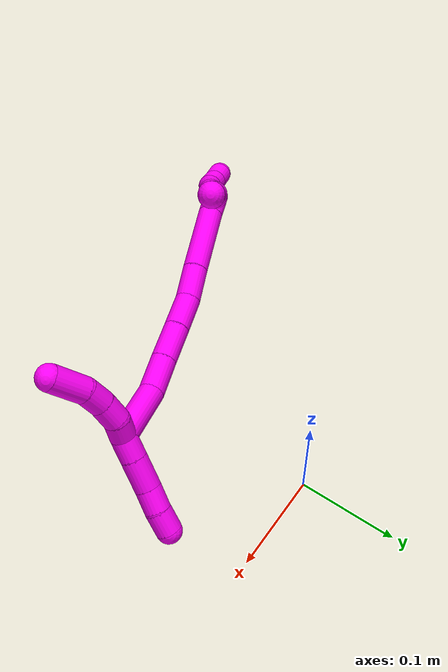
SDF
<sdf version="1.7">
 <world name="default">
  <model name="10">
   <static>0</static>
   <link name="10">
    <collision name="collision-cylinder-e_1_2_8">
     <pose>0.000528 -0.00213 -0.059016 3.10552 0.008933 0.485471</pose>
     <geometry><cylinder><radius>0.0125</radius><length>0.118114</length></cylinder></geometry>
     <surface>
      <friction><ode><mu>1.16</mu><mu2>1.16</mu2><slip1>0</slip1><slip2>0</slip2></ode></friction>
      <contact><ode><kp>1e+06</kp><kd>1</kd><max_vel>0</max_vel><min_depth>0.001</min_depth></ode></contact>
     </surface>
    </collision>
    <visual name="visual-cylinder-e_1_2_8">
     <pose>0.000528 -0.00213 -0.059016 3.10552 0.008933 0.485471</pose>
     <geometry><cylinder><radius>0.0125</radius><length>0.118114</length></cylinder></geometry>
     <material><ambient>1 0 0.964706 1</ambient></material>
    </visual>
    <collision name="collision-cylinder-e_2_8_6">
     <pose>0.001541 -0.003828 -0.133962 -3.11453 0.030501 -1.69025</pose>
     <geometry><cylinder><radius>0.0125</radius><length>0.031886</length></cylinder></geometry>
     <surface>
      <friction><ode><mu>1.16</mu><mu2>1.16</mu2><slip1>0</slip1><slip2>0</slip2></ode></friction>
      <contact><ode><kp>1e+06</kp><kd>1</kd><max_vel>0</max_vel><min_depth>0.001</min_depth></ode></contact>
     </surface>
    </collision>
    <visual name="visual-cylinder-e_2_8_6">
     <pose>0.001541 -0.003828 -0.133962 -3.11453 0.030501 -1.69025</pose>
     <geometry><cylinder><radius>0.0125</radius><length>0.031886</length></cylinder></geometry>
     <material><ambient>1 0 0.964706 1</ambient></material>
    </visual>
    <collision name="collision-cylinder-e_1_2_9">
     <pose>-0.002971 0.002964 0.009077 -0.315676 -0.301603 0.048361</pose>
     <geometry><cylinder><radius>0.0125</radius><length>0.02</length></cylinder></geometry>
     <surface>
      <friction><ode><mu>1.16</mu><mu2>1.16</mu2><slip1>0</slip1><slip2>0</slip2></ode></friction>
      <contact><ode><kp>1e+06</kp><kd>1</kd><max_vel>0</max_vel><min_depth>0.001</min_depth></ode></contact>
     </surface>
    </collision>
    <visual name="visual-cylinder-e_1_2_9">
     <pose>-0.002971 0.002964 0.009077 -0.315676 -0.301603 0.048361</pose>
     <geometry><cylinder><radius>0.0125</radius><length>0.02</length></cylinder></geometry>
     <material><ambient>1 0 0.964706 1</ambient></material>
    </visual>
    <collision name="collision-cylinder-e_2_9_10">
     <pose>-0.007734 0.005843 0.027991 0.008758 -0.180226 -0.000791</pose>
     <geometry><cylinder><radius>0.0125</radius><length>0.02</length></cylinder></geometry>
     <surface>
      <friction><ode><mu>1.16</mu><mu2>1.16</mu2><slip1>0</slip1><slip2>0</slip2></ode></friction>
      <contact><ode><kp>1e+06</kp><kd>1</kd><max_vel>0</max_vel><min_depth>0.001</min_depth></ode></contact>
     </surface>
    </collision>
    <visual name="visual-cylinder-e_2_9_10">
     <pose>-0.007734 0.005843 0.027991 0.008758 -0.180226 -0.000791</pose>
     <geometry><cylinder><radius>0.0125</radius><length>0.02</length></cylinder></geometry>
     <material><ambient>1 0 0.964706 1</ambient></material>
    </visual>
    <collision name="collision-cylinder-e_3_10_11">
     <pose>-0.012327 0.006242 0.047416 -0.050612 -0.283901 0.007235</pose>
     <geometry><cylinder><radius>0.0125</radius><length>0.02</length></cylinder></geometry>
     <surface>
      <friction><ode><mu>1.16</mu><mu2>1.16</mu2><slip1>0</slip1><slip2>0</slip2></ode></friction>
      <contact><ode><kp>1e+06</kp><kd>1</kd><max_vel>0</max_vel><min_depth>0.001</min_depth></ode></contact>
     </surface>
    </collision>
    <visual name="visual-cylinder-e_3_10_11">
     <pose>-0.012327 0.006242 0.047416 -0.050612 -0.283901 0.007235</pose>
     <geometry><cylinder><radius>0.0125</radius><length>0.02</length></cylinder></geometry>
     <material><ambient>1 0 0.964706 1</ambient></material>
    </visual>
    <collision name="collision-cylinder-e_4_11_12">
     <pose>-0.01773 0.003818 0.066211 0.306088 -0.263203 -0.04083</pose>
     <geometry><cylinder><radius>0.0125</radius><length>0.02</length></cylinder></geometry>
     <surface>
      <friction><ode><mu>1.16</mu><mu2>1.16</mu2><slip1>0</slip1><slip2>0</slip2></ode></friction>
      <contact><ode><kp>1e+06</kp><kd>1</kd><max_vel>0</max_vel><min_depth>0.001</min_depth></ode></contact>
     </surface>
    </collision>
    <visual name="visual-cylinder-e_4_11_12">
     <pose>-0.01773 0.003818 0.066211 0.306088 -0.263203 -0.04083</pose>
     <geometry><cylinder><radius>0.0125</radius><length>0.02</length></cylinder></geometry>
     <material><ambient>1 0 0.964706 1</ambient></material>
    </visual>
    <collision name="collision-cylinder-e_5_12_5">
     <pose>-0.024077 -0.002555 0.084018 0.382891 -0.383856 -0.07529</pose>
     <geometry><cylinder><radius>0.0125</radius><length>0.02</length></cylinder></geometry>
     <surface>
      <friction><ode><mu>1.16</mu><mu2>1.16</mu2><slip1>0</slip1><slip2>0</slip2></ode></friction>
      <contact><ode><kp>1e+06</kp><kd>1</kd><max_vel>0</max_vel><min_depth>0.001</min_depth></ode></contact>
     </surface>
    </collision>
    <visual name="visual-cylinder-e_5_12_5">
     <pose>-0.024077 -0.002555 0.084018 0.382891 -0.383856 -0.07529</pose>
     <geometry><cylinder><radius>0.0125</radius><length>0.02</length></cylinder></geometry>
     <material><ambient>1 0 0.964706 1</ambient></material>
    </visual>
    <collision name="collision-cylinder-e_1_2_13">
     <pose>0.008031 0.004537 -0.006404 -2.52521 0.796925 -1.84672</pose>
     <geometry><cylinder><radius>0.0125</radius><length>0.022457</length></cylinder></geometry>
     <surface>
      <friction><ode><mu>1.16</mu><mu2>1.16</mu2><slip1>0</slip1><slip2>0</slip2></ode></friction>
      <contact><ode><kp>1e+06</kp><kd>1</kd><max_vel>0</max_vel><min_depth>0.001</min_depth></ode></contact>
     </surface>
    </collision>
    <visual name="visual-cylinder-e_1_2_13">
     <pose>0.008031 0.004537 -0.006404 -2.52521 0.796925 -1.84672</pose>
     <geometry><cylinder><radius>0.0125</radius><length>0.022457</length></cylinder></geometry>
     <material><ambient>1 0 0.964706 1</ambient></material>
    </visual>
    <collision name="collision-cylinder-e_2_13_14">
     <pose>0.0421 0.022037 -0.032037 -2.54842 0.843162 -1.94529</pose>
     <geometry><cylinder><radius>0.0125</radius><length>0.069738</length></cylinder></geometry>
     <surface>
      <friction><ode><mu>1.16</mu><mu2>1.16</mu2><slip1>0</slip1><slip2>0</slip2></ode></friction>
      <contact><ode><kp>1e+06</kp><kd>1</kd><max_vel>0</max_vel><min_depth>0.001</min_depth></ode></contact>
     </surface>
    </collision>
    <visual name="visual-cylinder-e_2_13_14">
     <pose>0.0421 0.022037 -0.032037 -2.54842 0.843162 -1.94529</pose>
     <geometry><cylinder><radius>0.0125</radius><length>0.069738</length></cylinder></geometry>
     <material><ambient>1 0 0.964706 1</ambient></material>
    </visual>
    <collision name="collision-cylinder-e_3_14_15">
     <pose>0.081829 0.041377 -0.060304 -2.52719 0.891281 -1.96912</pose>
     <geometry><cylinder><radius>0.0125</radius><length>0.0352</length></cylinder></geometry>
     <surface>
      <friction><ode><mu>1.16</mu><mu2>1.16</mu2><slip1>0</slip1><slip2>0</slip2></ode></friction>
      <contact><ode><kp>1e+06</kp><kd>1</kd><max_vel>0</max_vel><min_depth>0.001</min_depth></ode></contact>
     </surface>
    </collision>
    <visual name="visual-cylinder-e_3_14_15">
     <pose>0.081829 0.041377 -0.060304 -2.52719 0.891281 -1.96912</pose>
     <geometry><cylinder><radius>0.0125</radius><length>0.0352</length></cylinder></geometry>
     <material><ambient>1 0 0.964706 1</ambient></material>
    </visual>
    <collision name="collision-cylinder-e_4_15_16">
     <pose>0.107139 0.055259 -0.080925 -2.56666 0.699732 -1.77962</pose>
     <geometry><cylinder><radius>0.0125</radius><length>0.036086</length></cylinder></geometry>
     <surface>
      <friction><ode><mu>1.16</mu><mu2>1.16</mu2><slip1>0</slip1><slip2>0</slip2></ode></friction>
      <contact><ode><kp>1e+06</kp><kd>1</kd><max_vel>0</max_vel><min_depth>0.001</min_depth></ode></contact>
     </surface>
    </collision>
    <visual name="visual-cylinder-e_4_15_16">
     <pose>0.107139 0.055259 -0.080925 -2.56666 0.699732 -1.77962</pose>
     <geometry><cylinder><radius>0.0125</radius><length>0.036086</length></cylinder></geometry>
     <material><ambient>1 0 0.964706 1</ambient></material>
    </visual>
    <collision name="collision-cylinder-e_5_16_17">
     <pose>0.131213 0.07099 -0.104347 -2.53434 0.712526 -1.74202</pose>
     <geometry><cylinder><radius>0.0125</radius><length>0.0381</length></cylinder></geometry>
     <surface>
      <friction><ode><mu>1.16</mu><mu2>1.16</mu2><slip1>0</slip1><slip2>0</slip2></ode></friction>
      <contact><ode><kp>1e+06</kp><kd>1</kd><max_vel>0</max_vel><min_depth>0.001</min_depth></ode></contact>
     </surface>
    </collision>
    <visual name="visual-cylinder-e_5_16_17">
     <pose>0.131213 0.07099 -0.104347 -2.53434 0.712526 -1.74202</pose>
     <geometry><cylinder><radius>0.0125</radius><length>0.0381</length></cylinder></geometry>
     <material><ambient>1 0 0.964706 1</ambient></material>
    </visual>
    <collision name="collision-cylinder-e_6_17_18">
     <pose>0.155876 0.086883 -0.127813 -2.55864 0.719725 -1.79528</pose>
     <geometry><cylinder><radius>0.0125</radius><length>0.037042</length></cylinder></geometry>
     <surface>
      <friction><ode><mu>1.16</mu><mu2>1.16</mu2><slip1>0</slip1><slip2>0</slip2></ode></friction>
      <contact><ode><kp>1e+06</kp><kd>1</kd><max_vel>0</max_vel><min_depth>0.001</min_depth></ode></contact>
     </surface>
    </collision>
    <visual name="visual-cylinder-e_6_17_18">
     <pose>0.155876 0.086883 -0.127813 -2.55864 0.719725 -1.79528</pose>
     <geometry><cylinder><radius>0.0125</radius><length>0.037042</length></cylinder></geometry>
     <material><ambient>1 0 0.964706 1</ambient></material>
    </visual>
    <collision name="collision-cylinder-e_7_18_1">
     <pose>0.180376 0.107157 -0.164576 -2.6767 0.412073 -1.44657</pose>
     <geometry><cylinder><radius>0.0125</radius><length>0.061377</length></cylinder></geometry>
     <surface>
      <friction><ode><mu>1.16</mu><mu2>1.16</mu2><slip1>0</slip1><slip2>0</slip2></ode></friction>
      <contact><ode><kp>1e+06</kp><kd>1</kd><max_vel>0</max_vel><min_depth>0.001</min_depth></ode></contact>
     </surface>
    </collision>
    <visual name="visual-cylinder-e_7_18_1">
     <pose>0.180376 0.107157 -0.164576 -2.6767 0.412073 -1.44657</pose>
     <geometry><cylinder><radius>0.0125</radius><length>0.061377</length></cylinder></geometry>
     <material><ambient>1 0 0.964706 1</ambient></material>
    </visual>
    <collision name="collision-cylinder-e_1_1_19">
     <pose>0.183765 0.119663 -0.194978 3.1225 -1.03642 -3.1081</pose>
     <geometry><cylinder><radius>0.0125</radius><length>0.020687</length></cylinder></geometry>
     <surface>
      <friction><ode><mu>1.16</mu><mu2>1.16</mu2><slip1>0</slip1><slip2>0</slip2></ode></friction>
      <contact><ode><kp>1e+06</kp><kd>1</kd><max_vel>0</max_vel><min_depth>0.001</min_depth></ode></contact>
     </surface>
    </collision>
    <visual name="visual-cylinder-e_1_1_19">
     <pose>0.183765 0.119663 -0.194978 3.1225 -1.03642 -3.1081</pose>
     <geometry><cylinder><radius>0.0125</radius><length>0.020687</length></cylinder></geometry>
     <material><ambient>1 0 0.964706 1</ambient></material>
    </visual>
    <collision name="collision-cylinder-e_2_19_20">
     <pose>0.165474 0.123013 -0.205141 -2.52755 -1.00294 2.09294</pose>
     <geometry><cylinder><radius>0.0125</radius><length>0.022275</length></cylinder></geometry>
     <surface>
      <friction><ode><mu>1.16</mu><mu2>1.16</mu2><slip1>0</slip1><slip2>0</slip2></ode></friction>
      <contact><ode><kp>1e+06</kp><kd>1</kd><max_vel>0</max_vel><min_depth>0.001</min_depth></ode></contact>
     </surface>
    </collision>
    <visual name="visual-cylinder-e_2_19_20">
     <pose>0.165474 0.123013 -0.205141 -2.52755 -1.00294 2.09294</pose>
     <geometry><cylinder><radius>0.0125</radius><length>0.022275</length></cylinder></geometry>
     <material><ambient>1 0 0.964706 1</ambient></material>
    </visual>
    <collision name="collision-cylinder-e_3_20_21">
     <pose>0.148103 0.130728 -0.215975 -2.519 -0.829231 1.87907</pose>
     <geometry><cylinder><radius>0.0125</radius><length>0.021645</length></cylinder></geometry>
     <surface>
      <friction><ode><mu>1.16</mu><mu2>1.16</mu2><slip1>0</slip1><slip2>0</slip2></ode></friction>
      <contact><ode><kp>1e+06</kp><kd>1</kd><max_vel>0</max_vel><min_depth>0.001</min_depth></ode></contact>
     </surface>
    </collision>
    <visual name="visual-cylinder-e_3_20_21">
     <pose>0.148103 0.130728 -0.215975 -2.519 -0.829231 1.87907</pose>
     <geometry><cylinder><radius>0.0125</radius><length>0.021645</length></cylinder></geometry>
     <material><ambient>1 0 0.964706 1</ambient></material>
    </visual>
    <collision name="collision-cylinder-e_4_21_4">
     <pose>0.130168 0.145828 -0.231742 -2.30738 -0.597463 1.21469</pose>
     <geometry><cylinder><radius>0.0125</radius><length>0.035392</length></cylinder></geometry>
     <surface>
      <friction><ode><mu>1.16</mu><mu2>1.16</mu2><slip1>0</slip1><slip2>0</slip2></ode></friction>
      <contact><ode><kp>1e+06</kp><kd>1</kd><max_vel>0</max_vel><min_depth>0.001</min_depth></ode></contact>
     </surface>
    </collision>
    <visual name="visual-cylinder-e_4_21_4">
     <pose>0.130168 0.145828 -0.231742 -2.30738 -0.597463 1.21469</pose>
     <geometry><cylinder><radius>0.0125</radius><length>0.035392</length></cylinder></geometry>
     <material><ambient>1 0 0.964706 1</ambient></material>
    </visual>
    <collision name="collision-cylinder-e_1_1_22">
     <pose>0.203484 0.117946 -0.188212 0.881276 1.35638 0.726158</pose>
     <geometry><cylinder><radius>0.0125</radius><length>0.022141</length></cylinder></geometry>
     <surface>
      <friction><ode><mu>1.16</mu><mu2>1.16</mu2><slip1>0</slip1><slip2>0</slip2></ode></friction>
      <contact><ode><kp>1e+06</kp><kd>1</kd><max_vel>0</max_vel><min_depth>0.001</min_depth></ode></contact>
     </surface>
    </collision>
    <visual name="visual-cylinder-e_1_1_22">
     <pose>0.203484 0.117946 -0.188212 0.881276 1.35638 0.726158</pose>
     <geometry><cylinder><radius>0.0125</radius><length>0.022141</length></cylinder></geometry>
     <material><ambient>1 0 0.964706 1</ambient></material>
    </visual>
    <collision name="collision-cylinder-e_2_22_23">
     <pose>0.229793 0.113566 -0.184384 0.832873 1.35088 0.681091</pose>
     <geometry><cylinder><radius>0.0125</radius><length>0.031749</length></cylinder></geometry>
     <surface>
      <friction><ode><mu>1.16</mu><mu2>1.16</mu2><slip1>0</slip1><slip2>0</slip2></ode></friction>
      <contact><ode><kp>1e+06</kp><kd>1</kd><max_vel>0</max_vel><min_depth>0.001</min_depth></ode></contact>
     </surface>
    </collision>
    <visual name="visual-cylinder-e_2_22_23">
     <pose>0.229793 0.113566 -0.184384 0.832873 1.35088 0.681091</pose>
     <geometry><cylinder><radius>0.0125</radius><length>0.031749</length></cylinder></geometry>
     <material><ambient>1 0 0.964706 1</ambient></material>
    </visual>
    <collision name="collision-cylinder-e_3_23_24">
     <pose>0.256663 0.109149 -0.181724 1.39471 1.4067 1.23542</pose>
     <geometry><cylinder><radius>0.0125</radius><length>0.023064</length></cylinder></geometry>
     <surface>
      <friction><ode><mu>1.16</mu><mu2>1.16</mu2><slip1>0</slip1><slip2>0</slip2></ode></friction>
      <contact><ode><kp>1e+06</kp><kd>1</kd><max_vel>0</max_vel><min_depth>0.001</min_depth></ode></contact>
     </surface>
    </collision>
    <visual name="visual-cylinder-e_3_23_24">
     <pose>0.256663 0.109149 -0.181724 1.39471 1.4067 1.23542</pose>
     <geometry><cylinder><radius>0.0125</radius><length>0.023064</length></cylinder></geometry>
     <material><ambient>1 0 0.964706 1</ambient></material>
    </visual>
    <collision name="collision-cylinder-e_4_24_3">
     <pose>0.279178 0.104767 -0.179871 1.02838 1.31179 0.820108</pose>
     <geometry><cylinder><radius>0.0125</radius><length>0.023046</length></cylinder></geometry>
     <surface>
      <friction><ode><mu>1.16</mu><mu2>1.16</mu2><slip1>0</slip1><slip2>0</slip2></ode></friction>
      <contact><ode><kp>1e+06</kp><kd>1</kd><max_vel>0</max_vel><min_depth>0.001</min_depth></ode></contact>
     </surface>
    </collision>
    <visual name="visual-cylinder-e_4_24_3">
     <pose>0.279178 0.104767 -0.179871 1.02838 1.31179 0.820108</pose>
     <geometry><cylinder><radius>0.0125</radius><length>0.023046</length></cylinder></geometry>
     <material><ambient>1 0 0.964706 1</ambient></material>
    </visual>
    <collision name="collision-sphere-3">
     <pose>0.290316 0.102239 -0.178347 0 -0 0</pose>
     <geometry><sphere><radius>0.0125</radius></sphere></geometry>
     <surface>
      <friction><ode><mu>1.16</mu><mu2>1.16</mu2><slip1>0</slip1><slip2>0</slip2></ode></friction>
      <contact><ode><kp>1e+06</kp><kd>1</kd><max_vel>0</max_vel><min_depth>0.001</min_depth></ode></contact>
     </surface>
    </collision>
    <visual name="visual-sphere-3">
     <pose>0.290316 0.102239 -0.178347 0 -0 0</pose>
     <geometry><sphere><radius>0.0125</radius></sphere></geometry>
     <material><ambient>1 0 0.964706 1</ambient></material>
    </visual>
    <collision name="collision-sphere-24">
     <pose>0.268039 0.107294 -0.181394 0 -0 0</pose>
     <geometry><sphere><radius>0.0125</radius></sphere></geometry>
     <surface>
      <friction><ode><mu>1.16</mu><mu2>1.16</mu2><slip1>0</slip1><slip2>0</slip2></ode></friction>
      <contact><ode><kp>1e+06</kp><kd>1</kd><max_vel>0</max_vel><min_depth>0.001</min_depth></ode></contact>
     </surface>
    </collision>
    <visual name="visual-sphere-24">
     <pose>0.268039 0.107294 -0.181394 0 -0 0</pose>
     <geometry><sphere><radius>0.0125</radius></sphere></geometry>
     <material><ambient>1 0 0.964706 1</ambient></material>
    </visual>
    <collision name="collision-sphere-23">
     <pose>0.245286 0.111004 -0.182054 0 -0 0</pose>
     <geometry><sphere><radius>0.0125</radius></sphere></geometry>
     <surface>
      <friction><ode><mu>1.16</mu><mu2>1.16</mu2><slip1>0</slip1><slip2>0</slip2></ode></friction>
      <contact><ode><kp>1e+06</kp><kd>1</kd><max_vel>0</max_vel><min_depth>0.001</min_depth></ode></contact>
     </surface>
    </collision>
    <visual name="visual-sphere-23">
     <pose>0.245286 0.111004 -0.182054 0 -0 0</pose>
     <geometry><sphere><radius>0.0125</radius></sphere></geometry>
     <material><ambient>1 0 0.964706 1</ambient></material>
    </visual>
    <collision name="collision-sphere-22">
     <pose>0.214301 0.116128 -0.186714 0 -0 0</pose>
     <geometry><sphere><radius>0.0125</radius></sphere></geometry>
     <surface>
      <friction><ode><mu>1.16</mu><mu2>1.16</mu2><slip1>0</slip1><slip2>0</slip2></ode></friction>
      <contact><ode><kp>1e+06</kp><kd>1</kd><max_vel>0</max_vel><min_depth>0.001</min_depth></ode></contact>
     </surface>
    </collision>
    <visual name="visual-sphere-22">
     <pose>0.214301 0.116128 -0.186714 0 -0 0</pose>
     <geometry><sphere><radius>0.0125</radius></sphere></geometry>
     <material><ambient>1 0 0.964706 1</ambient></material>
    </visual>
    <collision name="collision-sphere-4">
     <pose>0.120213 0.156666 -0.24157 0 -0 0</pose>
     <geometry><sphere><radius>0.0125</radius></sphere></geometry>
     <surface>
      <friction><ode><mu>1.16</mu><mu2>1.16</mu2><slip1>0</slip1><slip2>0</slip2></ode></friction>
      <contact><ode><kp>1e+06</kp><kd>1</kd><max_vel>0</max_vel><min_depth>0.001</min_depth></ode></contact>
     </surface>
    </collision>
    <visual name="visual-sphere-4">
     <pose>0.120213 0.156666 -0.24157 0 -0 0</pose>
     <geometry><sphere><radius>0.0125</radius></sphere></geometry>
     <material><ambient>1 0 0.964706 1</ambient></material>
    </visual>
    <collision name="collision-sphere-21">
     <pose>0.140123 0.13499 -0.221914 0 -0 0</pose>
     <geometry><sphere><radius>0.0125</radius></sphere></geometry>
     <surface>
      <friction><ode><mu>1.16</mu><mu2>1.16</mu2><slip1>0</slip1><slip2>0</slip2></ode></friction>
      <contact><ode><kp>1e+06</kp><kd>1</kd><max_vel>0</max_vel><min_depth>0.001</min_depth></ode></contact>
     </surface>
    </collision>
    <visual name="visual-sphere-21">
     <pose>0.140123 0.13499 -0.221914 0 -0 0</pose>
     <geometry><sphere><radius>0.0125</radius></sphere></geometry>
     <material><ambient>1 0 0.964706 1</ambient></material>
    </visual>
    <collision name="collision-sphere-20">
     <pose>0.156084 0.126465 -0.210037 0 -0 0</pose>
     <geometry><sphere><radius>0.0125</radius></sphere></geometry>
     <surface>
      <friction><ode><mu>1.16</mu><mu2>1.16</mu2><slip1>0</slip1><slip2>0</slip2></ode></friction>
      <contact><ode><kp>1e+06</kp><kd>1</kd><max_vel>0</max_vel><min_depth>0.001</min_depth></ode></contact>
     </surface>
    </collision>
    <visual name="visual-sphere-20">
     <pose>0.156084 0.126465 -0.210037 0 -0 0</pose>
     <geometry><sphere><radius>0.0125</radius></sphere></geometry>
     <material><ambient>1 0 0.964706 1</ambient></material>
    </visual>
    <collision name="collision-sphere-11">
     <pose>-0.015128 0.006728 0.057004 0 -0 0</pose>
     <geometry><sphere><radius>0.0125</radius></sphere></geometry>
     <surface>
      <friction><ode><mu>1.16</mu><mu2>1.16</mu2><slip1>0</slip1><slip2>0</slip2></ode></friction>
      <contact><ode><kp>1e+06</kp><kd>1</kd><max_vel>0</max_vel><min_depth>0.001</min_depth></ode></contact>
     </surface>
    </collision>
    <visual name="visual-sphere-11">
     <pose>-0.015128 0.006728 0.057004 0 -0 0</pose>
     <geometry><sphere><radius>0.0125</radius></sphere></geometry>
     <material><ambient>1 0 0.964706 1</ambient></material>
    </visual>
    <collision name="collision-sphere-10">
     <pose>-0.009526 0.005757 0.037829 0 -0 0</pose>
     <geometry><sphere><radius>0.0125</radius></sphere></geometry>
     <surface>
      <friction><ode><mu>1.16</mu><mu2>1.16</mu2><slip1>0</slip1><slip2>0</slip2></ode></friction>
      <contact><ode><kp>1e+06</kp><kd>1</kd><max_vel>0</max_vel><min_depth>0.001</min_depth></ode></contact>
     </surface>
    </collision>
    <visual name="visual-sphere-10">
     <pose>-0.009526 0.005757 0.037829 0 -0 0</pose>
     <geometry><sphere><radius>0.0125</radius></sphere></geometry>
     <material><ambient>1 0 0.964706 1</ambient></material>
    </visual>
    <collision name="collision-sphere-6">
     <pose>0.002027 -0.003397 -0.149892 0 -0 0</pose>
     <geometry><sphere><radius>0.0125</radius></sphere></geometry>
     <surface>
      <friction><ode><mu>1.16</mu><mu2>1.16</mu2><slip1>0</slip1><slip2>0</slip2></ode></friction>
      <contact><ode><kp>1e+06</kp><kd>1</kd><max_vel>0</max_vel><min_depth>0.001</min_depth></ode></contact>
     </surface>
    </collision>
    <visual name="visual-sphere-6">
     <pose>0.002027 -0.003397 -0.149892 0 -0 0</pose>
     <geometry><sphere><radius>0.0125</radius></sphere></geometry>
     <material><ambient>1 0 0.964706 1</ambient></material>
    </visual>
    <collision name="collision-sphere-9">
     <pose>-0.005941 0.005929 0.018154 0 -0 0</pose>
     <geometry><sphere><radius>0.0125</radius></sphere></geometry>
     <surface>
      <friction><ode><mu>1.16</mu><mu2>1.16</mu2><slip1>0</slip1><slip2>0</slip2></ode></friction>
      <contact><ode><kp>1e+06</kp><kd>1</kd><max_vel>0</max_vel><min_depth>0.001</min_depth></ode></contact>
     </surface>
    </collision>
    <visual name="visual-sphere-9">
     <pose>-0.005941 0.005929 0.018154 0 -0 0</pose>
     <geometry><sphere><radius>0.0125</radius></sphere></geometry>
     <material><ambient>1 0 0.964706 1</ambient></material>
    </visual>
    <collision name="collision-sphere-2">
     <geometry><sphere><radius>0.0125</radius></sphere></geometry>
     <surface>
      <friction><ode><mu>1.16</mu><mu2>1.16</mu2><slip1>0</slip1><slip2>0</slip2></ode></friction>
      <contact><ode><kp>1e+06</kp><kd>1</kd><max_vel>0</max_vel><min_depth>0.001</min_depth></ode></contact>
     </surface>
    </collision>
    <visual name="visual-sphere-2">
     <geometry><sphere><radius>0.0125</radius></sphere></geometry>
     <material><ambient>1 0 0.964706 1</ambient></material>
    </visual>
    <collision name="collision-sphere-19">
     <pose>0.174863 0.119562 -0.200245 0 -0 0</pose>
     <geometry><sphere><radius>0.0125</radius></sphere></geometry>
     <surface>
      <friction><ode><mu>1.16</mu><mu2>1.16</mu2><slip1>0</slip1><slip2>0</slip2></ode></friction>
      <contact><ode><kp>1e+06</kp><kd>1</kd><max_vel>0</max_vel><min_depth>0.001</min_depth></ode></contact>
     </surface>
    </collision>
    <visual name="visual-sphere-19">
     <pose>0.174863 0.119562 -0.200245 0 -0 0</pose>
     <geometry><sphere><radius>0.0125</radius></sphere></geometry>
     <material><ambient>1 0 0.964706 1</ambient></material>
    </visual>
    <collision name="collision-sphere-8">
     <pose>0.001055 -0.00426 -0.118033 0 -0 0</pose>
     <geometry><sphere><radius>0.0125</radius></sphere></geometry>
     <surface>
      <friction><ode><mu>1.16</mu><mu2>1.16</mu2><slip1>0</slip1><slip2>0</slip2></ode></friction>
      <contact><ode><kp>1e+06</kp><kd>1</kd><max_vel>0</max_vel><min_depth>0.001</min_depth></ode></contact>
     </surface>
    </collision>
    <visual name="visual-sphere-8">
     <pose>0.001055 -0.00426 -0.118033 0 -0 0</pose>
     <geometry><sphere><radius>0.0125</radius></sphere></geometry>
     <material><ambient>1 0 0.964706 1</ambient></material>
    </visual>
    <collision name="collision-sphere-12">
     <pose>-0.020332 0.000909 0.075417 0 -0 0</pose>
     <geometry><sphere><radius>0.0125</radius></sphere></geometry>
     <surface>
      <friction><ode><mu>1.16</mu><mu2>1.16</mu2><slip1>0</slip1><slip2>0</slip2></ode></friction>
      <contact><ode><kp>1e+06</kp><kd>1</kd><max_vel>0</max_vel><min_depth>0.001</min_depth></ode></contact>
     </surface>
    </collision>
    <visual name="visual-sphere-12">
     <pose>-0.020332 0.000909 0.075417 0 -0 0</pose>
     <geometry><sphere><radius>0.0125</radius></sphere></geometry>
     <material><ambient>1 0 0.964706 1</ambient></material>
    </visual>
    <collision name="collision-sphere-5">
     <pose>-0.027822 -0.00602 0.092619 0 -0 0</pose>
     <geometry><sphere><radius>0.0125</radius></sphere></geometry>
     <surface>
      <friction><ode><mu>1.16</mu><mu2>1.16</mu2><slip1>0</slip1><slip2>0</slip2></ode></friction>
      <contact><ode><kp>1e+06</kp><kd>1</kd><max_vel>0</max_vel><min_depth>0.001</min_depth></ode></contact>
     </surface>
    </collision>
    <visual name="visual-sphere-5">
     <pose>-0.027822 -0.00602 0.092619 0 -0 0</pose>
     <geometry><sphere><radius>0.0125</radius></sphere></geometry>
     <material><ambient>1 0 0.964706 1</ambient></material>
    </visual>
    <collision name="collision-sphere-13">
     <pose>0.016061 0.009073 -0.012807 0 -0 0</pose>
     <geometry><sphere><radius>0.0125</radius></sphere></geometry>
     <surface>
      <friction><ode><mu>1.16</mu><mu2>1.16</mu2><slip1>0</slip1><slip2>0</slip2></ode></friction>
      <contact><ode><kp>1e+06</kp><kd>1</kd><max_vel>0</max_vel><min_depth>0.001</min_depth></ode></contact>
     </surface>
    </collision>
    <visual name="visual-sphere-13">
     <pose>0.016061 0.009073 -0.012807 0 -0 0</pose>
     <geometry><sphere><radius>0.0125</radius></sphere></geometry>
     <material><ambient>1 0 0.964706 1</ambient></material>
    </visual>
    <collision name="collision-sphere-14">
     <pose>0.068138 0.035001 -0.051267 0 -0 0</pose>
     <geometry><sphere><radius>0.0125</radius></sphere></geometry>
     <surface>
      <friction><ode><mu>1.16</mu><mu2>1.16</mu2><slip1>0</slip1><slip2>0</slip2></ode></friction>
      <contact><ode><kp>1e+06</kp><kd>1</kd><max_vel>0</max_vel><min_depth>0.001</min_depth></ode></contact>
     </surface>
    </collision>
    <visual name="visual-sphere-14">
     <pose>0.068138 0.035001 -0.051267 0 -0 0</pose>
     <geometry><sphere><radius>0.0125</radius></sphere></geometry>
     <material><ambient>1 0 0.964706 1</ambient></material>
    </visual>
    <collision name="collision-sphere-15">
     <pose>0.09552 0.047753 -0.069342 0 -0 0</pose>
     <geometry><sphere><radius>0.0125</radius></sphere></geometry>
     <surface>
      <friction><ode><mu>1.16</mu><mu2>1.16</mu2><slip1>0</slip1><slip2>0</slip2></ode></friction>
      <contact><ode><kp>1e+06</kp><kd>1</kd><max_vel>0</max_vel><min_depth>0.001</min_depth></ode></contact>
     </surface>
    </collision>
    <visual name="visual-sphere-15">
     <pose>0.09552 0.047753 -0.069342 0 -0 0</pose>
     <geometry><sphere><radius>0.0125</radius></sphere></geometry>
     <material><ambient>1 0 0.964706 1</ambient></material>
    </visual>
    <collision name="collision-sphere-16">
     <pose>0.118759 0.062765 -0.092509 0 -0 0</pose>
     <geometry><sphere><radius>0.0125</radius></sphere></geometry>
     <surface>
      <friction><ode><mu>1.16</mu><mu2>1.16</mu2><slip1>0</slip1><slip2>0</slip2></ode></friction>
      <contact><ode><kp>1e+06</kp><kd>1</kd><max_vel>0</max_vel><min_depth>0.001</min_depth></ode></contact>
     </surface>
    </collision>
    <visual name="visual-sphere-16">
     <pose>0.118759 0.062765 -0.092509 0 -0 0</pose>
     <geometry><sphere><radius>0.0125</radius></sphere></geometry>
     <material><ambient>1 0 0.964706 1</ambient></material>
    </visual>
    <collision name="collision-sphere-17">
     <pose>0.143667 0.079216 -0.116186 0 -0 0</pose>
     <geometry><sphere><radius>0.0125</radius></sphere></geometry>
     <surface>
      <friction><ode><mu>1.16</mu><mu2>1.16</mu2><slip1>0</slip1><slip2>0</slip2></ode></friction>
      <contact><ode><kp>1e+06</kp><kd>1</kd><max_vel>0</max_vel><min_depth>0.001</min_depth></ode></contact>
     </surface>
    </collision>
    <visual name="visual-sphere-17">
     <pose>0.143667 0.079216 -0.116186 0 -0 0</pose>
     <geometry><sphere><radius>0.0125</radius></sphere></geometry>
     <material><ambient>1 0 0.964706 1</ambient></material>
    </visual>
    <collision name="collision-sphere-18">
     <pose>0.168085 0.09455 -0.13944 0 -0 0</pose>
     <geometry><sphere><radius>0.0125</radius></sphere></geometry>
     <surface>
      <friction><ode><mu>1.16</mu><mu2>1.16</mu2><slip1>0</slip1><slip2>0</slip2></ode></friction>
      <contact><ode><kp>1e+06</kp><kd>1</kd><max_vel>0</max_vel><min_depth>0.001</min_depth></ode></contact>
     </surface>
    </collision>
    <visual name="visual-sphere-18">
     <pose>0.168085 0.09455 -0.13944 0 -0 0</pose>
     <geometry><sphere><radius>0.0125</radius></sphere></geometry>
     <material><ambient>1 0 0.964706 1</ambient></material>
    </visual>
    <collision name="collision-sphere-1">
     <pose>0.192667 0.119763 -0.189711 0 -0 0</pose>
     <geometry><sphere><radius>0.0125</radius></sphere></geometry>
     <surface>
      <friction><ode><mu>1.16</mu><mu2>1.16</mu2><slip1>0</slip1><slip2>0</slip2></ode></friction>
      <contact><ode><kp>1e+06</kp><kd>1</kd><max_vel>0</max_vel><min_depth>0.001</min_depth></ode></contact>
     </surface>
    </collision>
    <visual name="visual-sphere-1">
     <pose>0.192667 0.119763 -0.189711 0 -0 0</pose>
     <geometry><sphere><radius>0.0125</radius></sphere></geometry>
     <material><ambient>1 0 0.964706 1</ambient></material>
    </visual>
    <inertial>
     <pose>0.093302 0.055863 -0.096824 0 -0 0</pose>
     <mass>0.75</mass>
     <inertia>
      <ixx>0.000153</ixx>
      <ixy>0</ixy>
      <ixz>0</ixz>
      <iyy>-4.3e-05</iyy>
      <iyz>0</iyz>
      <izz>-0.0001</izz>
     </inertia>
    </inertial>
   </link>
   <pose>-0.175979 -0.229559 0.127081 -2.88356 0.764077 0.92463</pose>
  </model>
 </world>
</sdf>
